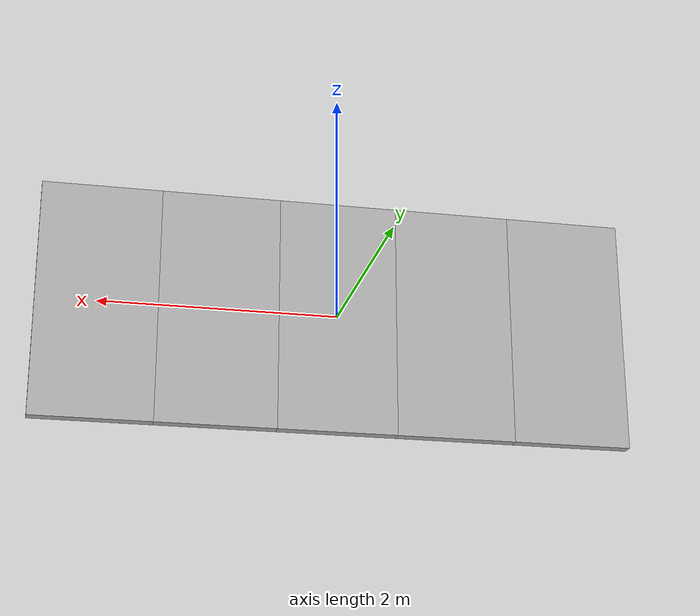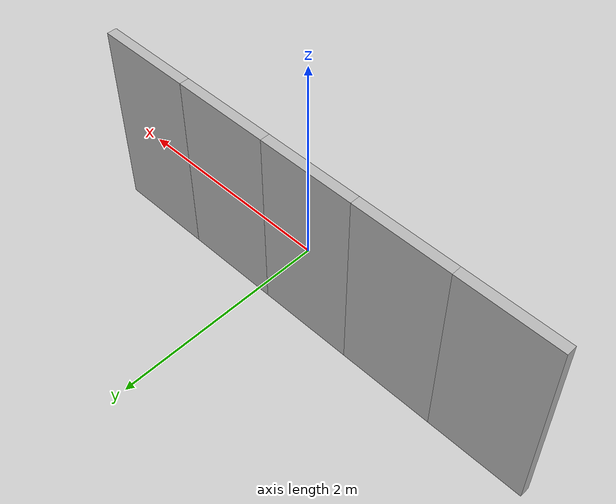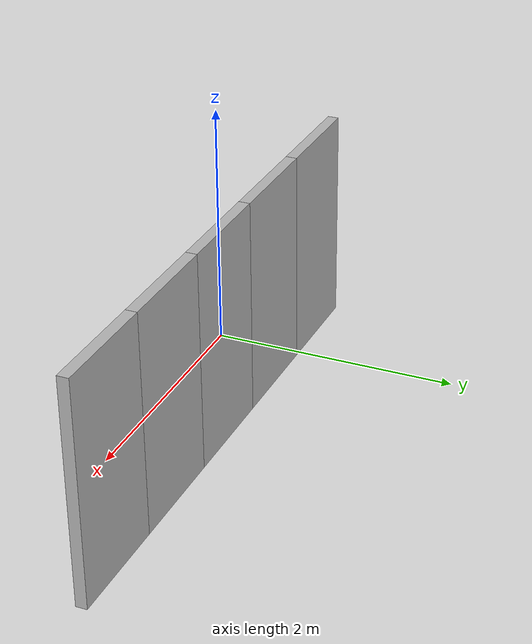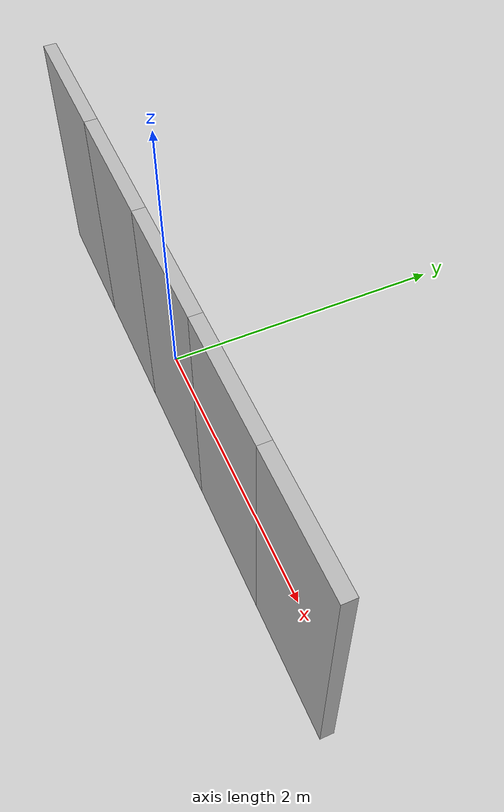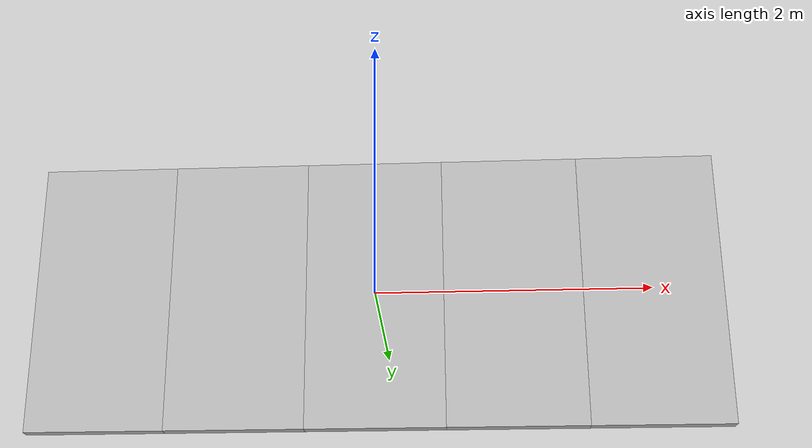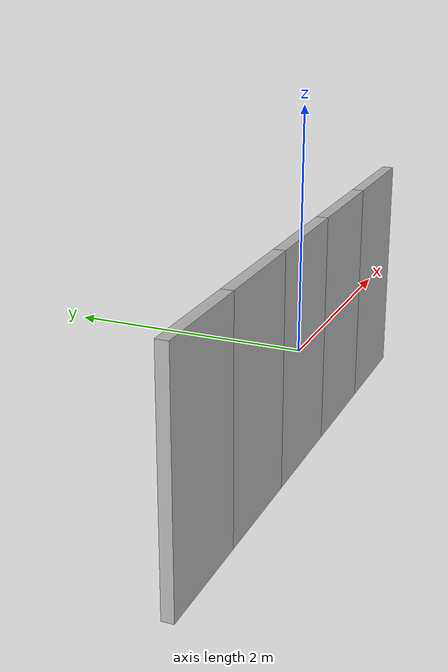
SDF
<?xml version='1.0'?>
<sdf version="1.4">
  <model name="env_large_room">
    <link name="base">
      <inertial>
        <mass>100.0</mass>
        <inertia>
          <ixx>33.4</ixx>
          <ixy>0.0</ixy>
          <ixz>0.0</ixz>
          <iyy>41.7</iyy>
          <iyz>0.0</iyz>
          <izz>8.42</izz>
        </inertia>
      </inertial>
      <collision name="collision1">
        <pose>-2 0 0 0 0 0</pose>
        <geometry>
          <box>
            <size>1.0 0.1 2.0</size>
          </box>
        </geometry>
      </collision>
      <collision name="collision2">
        <pose>-1 0 0 0 0 0</pose>
        <geometry>
          <box>
            <size>1.0 0.1 2.0</size>
          </box>
        </geometry>
      </collision>
      <collision name="collision3">
        <pose>0 0 0 0 0 0</pose>
        <geometry>
          <box>
            <size>1.0 0.1 2.0</size>
          </box>
        </geometry>
      </collision>
      <collision name="collision4">
        <pose>1 0 0 0 0 0</pose>
        <geometry>
          <box>
            <size>1.0 0.1 2.0</size>
          </box>
        </geometry>
      </collision>
      <collision name="collision5">
        <pose>2 0 0 0 0 0</pose>
        <geometry>
          <box>
            <size>1.0 0.1 2.0</size>
          </box>
        </geometry>
      </collision>

      <visual name="visual1">
        <pose>-2 0 0 0 0 0</pose>
        <geometry>
          <box>
            <size>1.0 0.1 2.0</size>
          </box>
        </geometry>
        <material>
          <script>
            <uri>model://env_wall/materials/test_texture.material</uri>
            <name>WallTexture01</name>
          </script>
        </material>
      </visual>
      <visual name="visual2">
        <pose>-1 0 0 0 0 0</pose>
        <geometry>
          <box>
            <size>1.0 0.1 2.0</size>
          </box>
        </geometry>
        <material>
          <script>
            <uri>model://env_wall/materials/test_texture.material</uri>
            <name>WallTexture01</name>
          </script>
        </material>
      </visual>
      <visual name="visual3">
        <pose>0 0 0 0 0 0</pose>
        <geometry>
          <box>
            <size>1.0 0.1 2.0</size>
          </box>
        </geometry>
        <material>
          <script>
            <uri>model://env_wall/materials/test_texture.material</uri>
            <name>WallTexture01</name>
          </script>
        </material>
      </visual>
      <visual name="visual4">
        <pose>1 0 0 0 0 0</pose>
        <geometry>
          <box>
            <size>1.0 0.1 2.0</size>
          </box>
        </geometry>
        <material>
          <script>
            <uri>model://env_wall/materials/test_texture.material</uri>
            <name>WallTexture01</name>
          </script>
        </material>
      </visual>
      <visual name="visual5">
        <pose>2 0 0 0 0 0</pose>
        <geometry>
          <box>
            <size>1.0 0.1 2.0</size>
          </box>
        </geometry>
        <material>
          <script>
            <uri>model://env_wall/materials/test_texture.material</uri>
            <name>WallTexture01</name>
          </script>
        </material>
      </visual>
    </link>

  </model>
</sdf>
